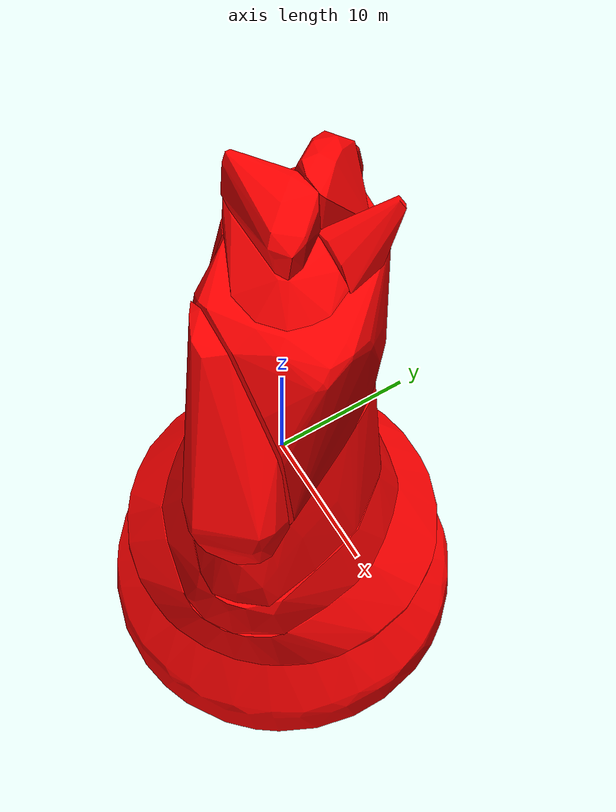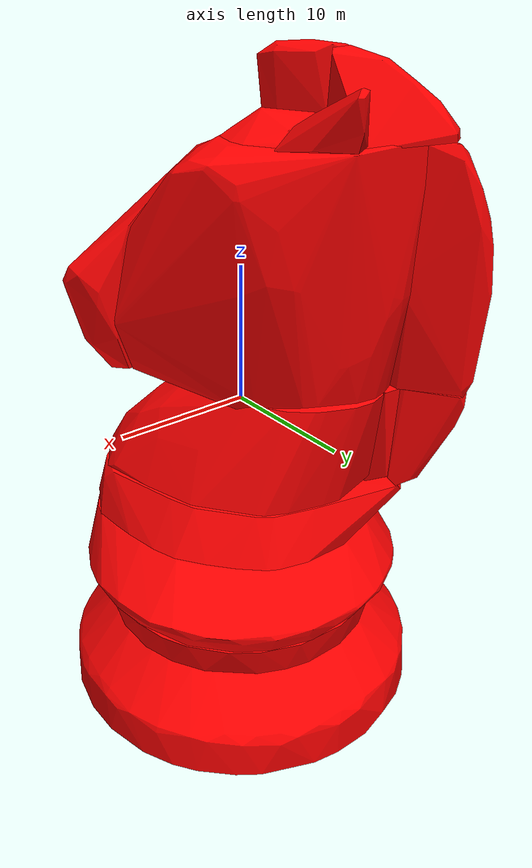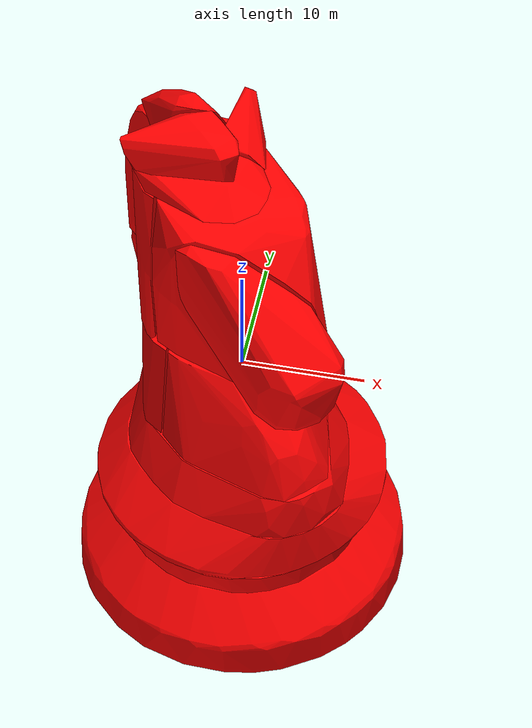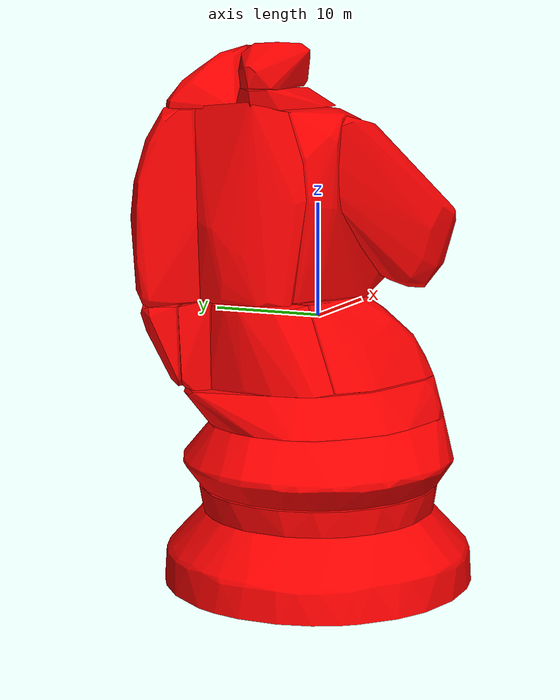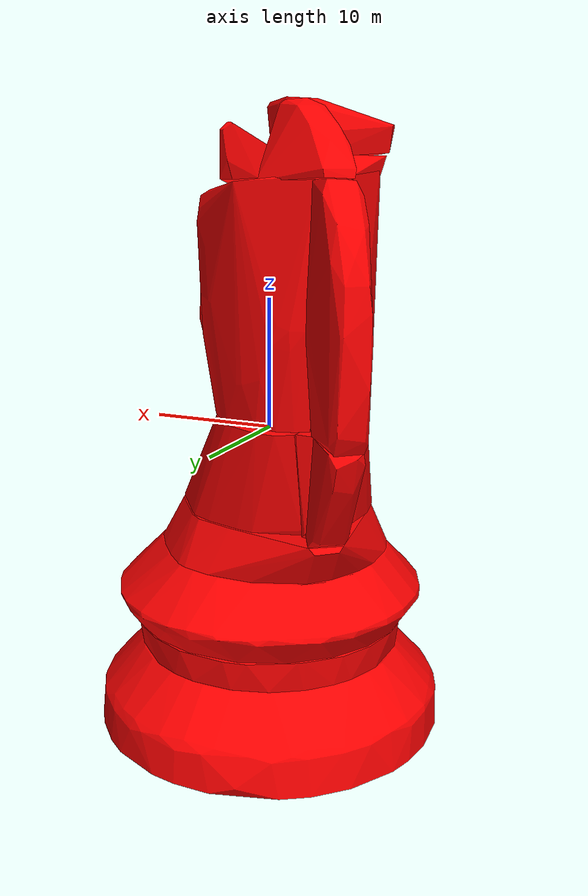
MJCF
<?xml version="1.0" encoding="utf-8"?>
<mujoco>
	<asset>
		<mesh file="holdouts/chess/collision/0_scad_chess_knight_20200504.stl" name="chess0"></mesh>
		<mesh file="holdouts/chess/collision/1_scad_chess_knight_20200504.stl" name="chess1"></mesh>
		<mesh file="holdouts/chess/collision/2_scad_chess_knight_20200504.stl" name="chess2"></mesh>
		<mesh file="holdouts/chess/collision/3_scad_chess_knight_20200504.stl" name="chess3"></mesh>
		<mesh file="holdouts/chess/collision/4_scad_chess_knight_20200504.stl" name="chess4"></mesh>
		<mesh file="holdouts/chess/collision/5_scad_chess_knight_20200504.stl" name="chess5"></mesh>
		<mesh file="holdouts/chess/collision/6_scad_chess_knight_20200504.stl" name="chess6"></mesh>
		<mesh file="holdouts/chess/collision/7_scad_chess_knight_20200504.stl" name="chess7"></mesh>
		<mesh file="holdouts/chess/collision/8_scad_chess_knight_20200504.stl" name="chess8"></mesh>
		<mesh file="holdouts/chess/collision/9_scad_chess_knight_20200504.stl" name="chess9"></mesh>
		<mesh file="holdouts/chess/collision/10_scad_chess_knight_20200504.stl" name="chess10"></mesh>
		<mesh file="holdouts/chess/collision/11_scad_chess_knight_20200504.stl" name="chess11"></mesh>
		<mesh file="holdouts/chess/collision/12_scad_chess_knight_20200504.stl" name="chess12"></mesh>
		<mesh file="holdouts/chess/collision/13_scad_chess_knight_20200504.stl" name="chess13"></mesh>
		<mesh file="holdouts/chess/collision/14_scad_chess_knight_20200504.stl" name="chess14"></mesh>
		<mesh file="holdouts/chess/collision/15_scad_chess_knight_20200504.stl" name="chess15"></mesh>
		<material name="block_mat" rgba="1.0 0 0 1.0" specular="0.25" shininess="0.10" reflectance="0.10"></material>
	</asset>
	<worldbody>
		<body>
			<geom type="mesh" mesh="chess0" material="block_mat"></geom>
			<geom type="mesh" mesh="chess1" material="block_mat"></geom>
			<geom type="mesh" mesh="chess2" material="block_mat"></geom>
			<geom type="mesh" mesh="chess3" material="block_mat"></geom>
			<geom type="mesh" mesh="chess4" material="block_mat"></geom>
			<geom type="mesh" mesh="chess5" material="block_mat"></geom>
			<geom type="mesh" mesh="chess6" material="block_mat"></geom>
			<geom type="mesh" mesh="chess7" material="block_mat"></geom>
			<geom type="mesh" mesh="chess8" material="block_mat"></geom>
			<geom type="mesh" mesh="chess9" material="block_mat"></geom>
			<geom type="mesh" mesh="chess10" material="block_mat"></geom>
			<geom type="mesh" mesh="chess11" material="block_mat"></geom>
			<geom type="mesh" mesh="chess12" material="block_mat"></geom>
			<geom type="mesh" mesh="chess13" material="block_mat"></geom>
			<geom type="mesh" mesh="chess14" material="block_mat"></geom>
			<geom type="mesh" mesh="chess15" material="block_mat"></geom>
			<joint type="free"></joint>
		</body>
	</worldbody>
</mujoco>
